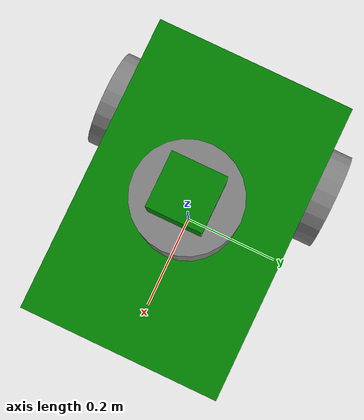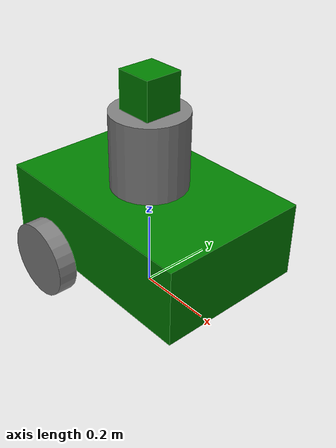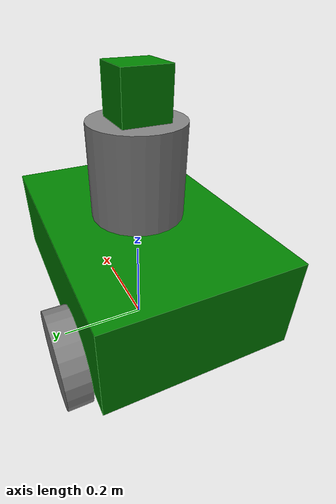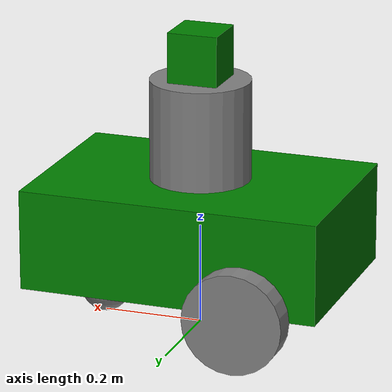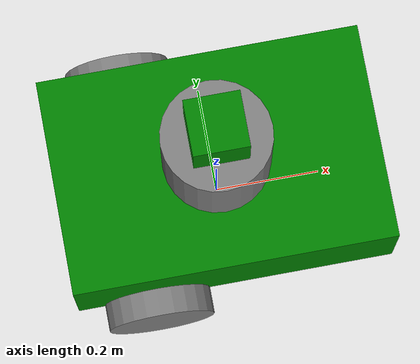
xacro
<?xml version="1.0"?>
<robot name="basic_robot" xmlns:xacro="http://www.ros.org/wiki/xacro">

  <xacro:property name="base_length" value="0.6" />
  <xacro:property name="base_width" value="0.4" />
  <xacro:property name="base_height" value="0.2" />
  <xacro:property name="wheel_radius" value="0.1" />
  <xacro:property name="wheel_length" value="0.05" />
  <xacro:property name="caster_radius" value="0.05" />

  <material name="green">
    <color rgba="0 0.5 0 1" />
  </material>

  <material name="grey">
    <color rgba="0.5 0.5 0.5 1" />
  </material>

  <xacro:macro name="box_inertia" params="m x y z xyz rpy">
    <inertial>
      <origin xyz="${xyz}" rpy="${rpy}"/>
      <mass value="${m}"/>
      <inertia ixx="${(m/12) * (y*y + z*z)}" ixy="0.0" ixz="0.0"
               iyy="${(m/12) * (x*x + z*z)}" iyz="0.0"
               izz="${(m/12) * (x*x + y*y)}"/>
    </inertial>
  </xacro:macro>

  <xacro:macro name="cylinder_inertia" params="m r h xyz rpy">
    <inertial>
      <origin xyz="${xyz}" rpy="${rpy}"/>
      <mass value="${m}"/>
      <inertia ixx="${(m/12) * (3*r*r + h*h)}" ixy="0.0" ixz="0.0"
               iyy="${(m/12) * (3*r*r + h*h)}" iyz="0.0"
               izz="${(m/2) * (r*r)}"/>
    </inertial>
  </xacro:macro>

  <xacro:macro name="sphere_inertia" params="m r xyz rpy">
    <inertial>
      <origin xyz="${xyz}" rpy="${rpy}"/>
      <mass value="${m}"/>
      <inertia ixx="${(2/5) * m * (r*r)}" ixy="0.0" ixz="0.0"
               iyy="${(2/5) * m * (r*r)}" iyz="0.0"
               izz="${(2/5) * m * (r*r)}"/>
    </inertial>
  </xacro:macro>

  <link name="base_footprint" />

  <link name="base_link">
    <visual>
      <geometry>
        <box size="${base_length} ${base_width} ${base_height}" />
      </geometry>
      <origin xyz="0 0 ${base_height/2}" rpy="0 0 0" />
      <material name="green" />
    </visual>
    <collision>
      <geometry>
        <box size="${base_length} ${base_width} ${base_height}" />
      </geometry>
      <origin xyz="0 0 ${base_height/2}" rpy="0 0 0" />
    </collision>
    <xacro:box_inertia m="5.0" x="${base_length}" y="${base_width}" z="${base_height}" xyz="0 0 ${base_height/2}" rpy="0 0 0" />
  </link>

  <link name="second_link">
    <visual>
      <geometry>
        <cylinder radius="${wheel_radius}" length="${base_height}" />
      </geometry>
      <origin xyz="0 0 ${base_height/2}" rpy="0 0 0" />
      <material name="grey" />
    </visual>
    <collision>
      <geometry>
        <sphere radius="${wheel_radius}" />
      </geometry>
      <origin xyz="0 0 ${base_height/2}" rpy="0 0 0" />
    </collision>
    <xacro:cylinder_inertia m="1.0" r="${wheel_radius}" h="${base_height}" xyz="0 0 ${base_height/2}" rpy="0 0 0" />
  </link>

  <link name="third_link">
    <visual>
      <geometry>
        <box size="0.1 0.1 0.1" />
      </geometry>
      <origin xyz="0 0 0.05" rpy="0 0 0" />
      <material name="green" />
    </visual>
    <collision>
      <geometry>
        <box size="0.1 0.1 0.1" />
      </geometry>
      <origin xyz="0 0 0.05" rpy="0 0 0" />
    </collision>
    <xacro:box_inertia m="0.5" x="0.1" y="0.1" z="0.1" xyz="0 0 0.05" rpy="0 0 0" />
  </link>

  <link name="right_wheel_link">
    <visual>
      <geometry>
        <cylinder radius="${wheel_radius}" length="${wheel_length}" />
      </geometry>
      <origin xyz="0 0 0" rpy="${pi/2} 0 0" />
      <material name="grey" />
    </visual>
    <collision>
      <geometry>
        <sphere radius="${wheel_radius}" />
      </geometry>
      <origin xyz="0 0 0" rpy="${pi/2} 0 0" />
    </collision>
    <xacro:cylinder_inertia m="1.0" r="${wheel_radius}" h="${wheel_length}" xyz="0 0 0" rpy="${pi/2} 0 0" />
  </link>

  <link name="left_wheel_link">
    <visual>
      <geometry>
        <cylinder radius="${wheel_radius}" length="${wheel_length}" />
      </geometry>
      <origin xyz="0 0 0" rpy="${pi/2} 0 0" />
      <material name="grey" />
    </visual>
    <collision>
      <geometry>
        <sphere radius="${wheel_radius}" />
      </geometry>
      <origin xyz="0 0 0" rpy="${pi/2} 0 0" />
    </collision>
    <xacro:cylinder_inertia m="1.0" r="${wheel_radius}" h="${wheel_length}" xyz="0 0 0" rpy="${pi/2} 0 0" />
  </link>

  <link name="caster_wheel_link">
    <visual>
      <geometry>
        <sphere radius="${caster_radius}" />
      </geometry>
      <origin xyz="0 0 0" rpy="0 0 0" />
      <material name="grey" />
    </visual>
    <collision>
      <geometry>
        <sphere radius="${caster_radius}" />
      </geometry>
      <origin xyz="0 0 0" rpy="0 0 0" />
    </collision>
    <xacro:sphere_inertia m="0.5" r="${caster_radius}" xyz="0 0 0" rpy="0 0 0" />
  </link>

  <link name="camera_link_optical" />

  <joint name="base_joint" type="fixed">
    <parent link="base_footprint" />
    <child link="base_link" />
    <origin xyz="0 0 ${base_height/2}" rpy="0 0 0"/>
  </joint>

  <joint name="base_second_joint" type="fixed">
    <parent link="base_link" />
    <child link="second_link" />
    <origin xyz="0 0 ${base_height}" rpy="0 0 0" />
  </joint>

  <joint name="second_third_joint" type="fixed">
    <parent link="second_link" />
    <child link="third_link" />
    <origin xyz="0 0 ${base_height}" rpy="0 0 0" />
  </joint>

  <joint name="base_right_wheel_joint" type="continuous">
    <parent link="base_link" />
    <child link="right_wheel_link" />
    <origin xyz="${-base_length/4.0} -0.225 0" rpy="0 0 0" />
    <axis xyz="0 1 0" />
  </joint>

  <joint name="base_left_wheel_joint" type="continuous">
    <parent link="base_link" />
    <child link="left_wheel_link" />
    <origin xyz="${-base_length/4.0} 0.225 0" rpy="0 0 0" />
    <axis xyz="0 1 0" />
  </joint>

  <joint name="base_caster_wheel_joint" type="fixed">
    <parent link="base_link" />
    <child link="caster_wheel_link" />
    <origin xyz="${base_length/3.0} 0 -0.05" rpy="0 0 0" />
  </joint>

  <joint name="camera_optical_joint" type="fixed">
    <origin xyz="0 0 0" rpy="${-pi/2} 0 ${-pi/2}" />
    <parent link="third_link" />
    <child link="camera_link_optical" />
  </joint>

  <gazebo reference="caster_wheel_link">
    <mu1 value="0.1" />
    <mu2 value="0.1" />
  </gazebo>

  <gazebo>
    <plugin filename="gz-sim-diff-drive-system" name="gz::sim::systems::DiffDrive">
      <left_joint>base_left_wheel_joint</left_joint>
      <right_joint>base_right_wheel_joint</right_joint>
      <wheel_separation>${base_width + wheel_length}</wheel_separation>
      <wheel_radius>${wheel_radius}</wheel_radius>
      <frame_id>odom</frame_id>
      <child_frame_id>base_footprint</child_frame_id>
    </plugin>
  </gazebo>

  <gazebo>
    <plugin filename="gz-sim-joint-state-publisher-system" name="gz::sim::systems::JointStatePublisher">
      <joint_name>base_left_wheel_joint</joint_name>
      <joint_name>base_right_wheel_joint</joint_name>
    </plugin>
  </gazebo>

  <gazebo reference="third_link">
    <sensor name="camera" type="camera">
      <camera>
        <horizontal_fov>1.3962634</horizontal_fov>
        <image>
          <width>640</width>
          <height>480</height>
          <format>R8G8B8</format>
        </image>
        <clip>
          <near>0.1</near>
          <far>15</far>
        </clip>
        <noise>
          <type>gaussian</type>
          <mean>0.0</mean>
          <stddev>0.007</stddev>
        </noise>
        <optical_frame_id>camera_link_optical</optical_frame_id>
        <camera_info_topic>camera/camera_info</camera_info_topic>
      </camera>
      <always_on>1</always_on>
      <update_rate>20</update_rate>
      <visualize>true</visualize>
      <topic>camera/image_raw</topic>
    </sensor>
  </gazebo>

</robot>
